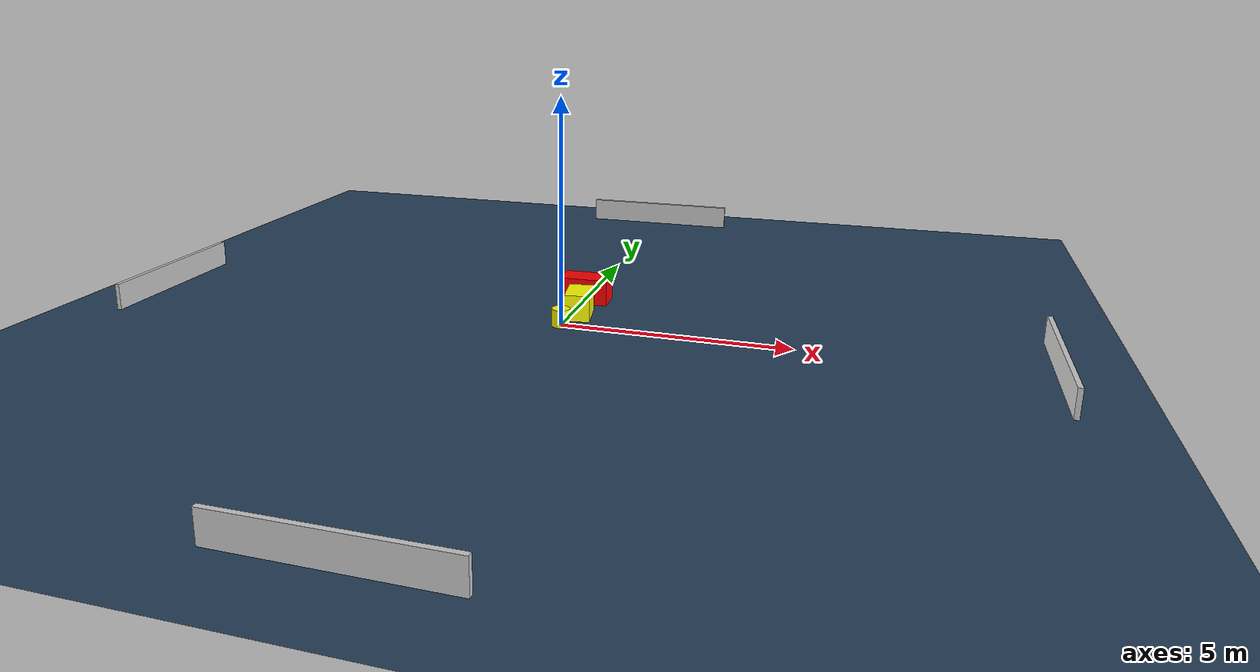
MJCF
<?xml version="1.0" ?>
<mujoco model="generated_environment">
  <option timestep="0.01" integrator="RK4" cone="elliptic"/>
  <default>
    <geom density="1"/>
  </default>
  <asset>
    <texture builtin="gradient" height="3072" name="skybox" rgb1="0.3 0.5 0.7" rgb2="0 0 0" type="skybox" width="512"/>
    <texture builtin="checker" height="300" name="groundplane" rgb1="0.2 0.3 0.4" rgb2="0.1 0.2 0.3" type="2d" width="300"/>
    <material name="groundplane" reflectance="0.2" texrepeat="5 5" texture="groundplane"/>
  </asset>
  <worldbody>
    <light dir="0 0 -1" directional="true" pos="0 0 1.5"/>
    <geom condim="3" friction="0.5 0.005 0.001" material="groundplane" name="floor" pos="0 0 0" size="0 0 0.05" type="plane"/>
    <body name="walls">
      <geom name="wall_1" condim="4" pos="-10.0 0.0 0.3" rgba="0.800000011920929 0.800000011920929 0.800000011920929 1.0" size="0.05 2.0 0.3" type="box"/>
      <geom name="wall_2" condim="4" pos="10.0 0.0 0.3" rgba="0.800000011920929 0.800000011920929 0.800000011920929 1.0" size="0.05 2.0 0.3" type="box"/>
      <geom name="wall_3" condim="4" pos="0.0 -10.0 0.3" rgba="0.800000011920929 0.800000011920929 0.800000011920929 1.0" size="2.0 0.05 0.3" type="box"/>
      <geom name="wall_4" condim="4" pos="0.0 10.0 0.3" rgba="0.800000011920929 0.800000011920929 0.800000011920929 1.0" size="2.0 0.05 0.3" type="box"/>
    </body>
    <body name="robot">
      <joint name="joint_x" type="slide" pos="0 0 0" axis="1 0 0"/>
      <joint name="joint_y" type="slide" pos="0 0 0" axis="0 1 0"/>
      <geom name="robot" type="cylinder" pos="0.0 0.0 0.2" size="0.2 0.2 0.0" mass="5.0" friction="1.0 0.005 0.0001" condim="4" rgba="1.0 1.0 0.0 1.0"/>
    </body>
    <body name="obstacle_1_movable">
      <geom name="obstacle_1_movable" condim="4" pos="0.18895874837999865 0.7676786828080614 0.3" euler="0 0 279.40431584339285" friction="0.0 0.005 0.001" rgba="1.0 1.0 0.0 1.0" size="0.4354688282338703 0.2805038261922748 0.3" type="box" mass="0.1"/>
      <joint type="free"/>
    </body>
    <body name="obstacle_2_static">
      <geom name="obstacle_2_static" condim="4" pos="0.030729093751164303 1.896551114254278 0.3" euler="0 0 271.3809749863283" friction="0.0 0.005 0.001" rgba="1.0 0.0 0.0 1.0" size="0.3184229465530569 0.5513123185852016 0.3" type="box"/>
    </body>
  </worldbody>
  <actuator>
    <motor name="actuator_x" joint="joint_x" gear="1" ctrlrange="-1 1"/>
    <motor name="actuator_y" joint="joint_y" gear="1" ctrlrange="-1 1"/>
  </actuator>
</mujoco>
